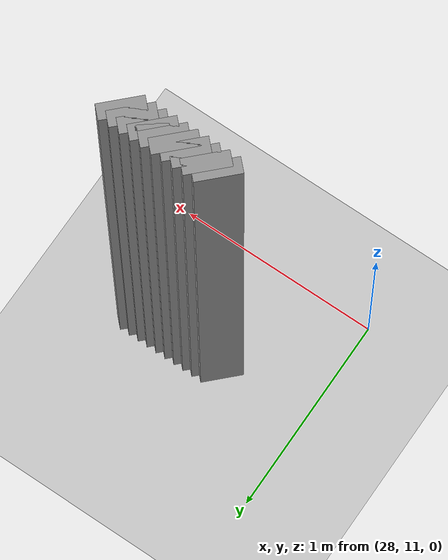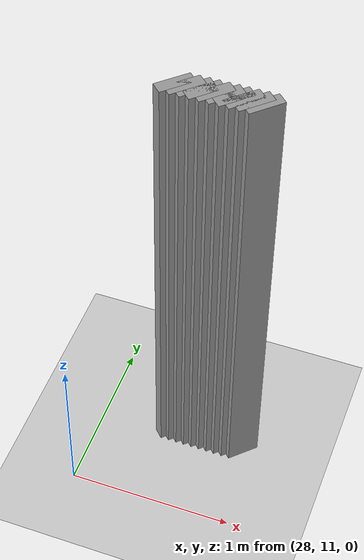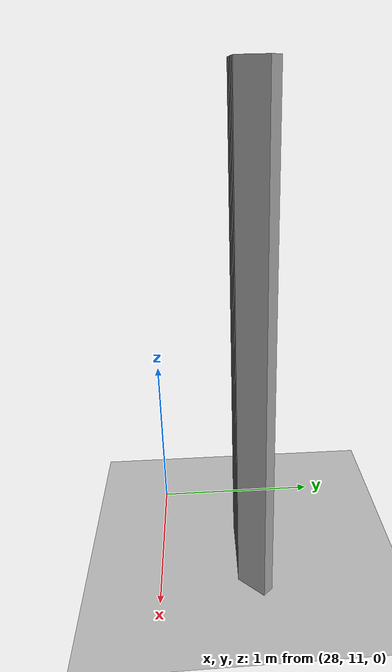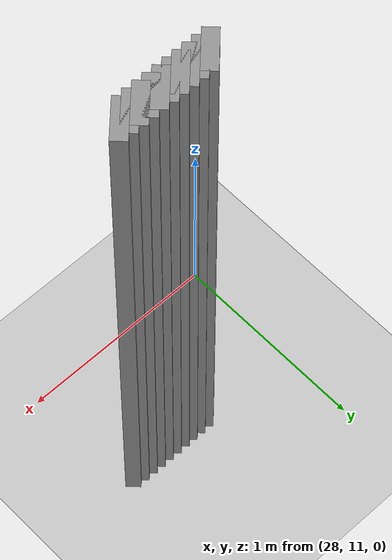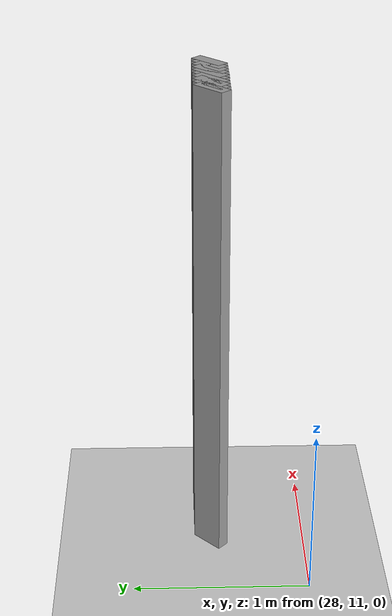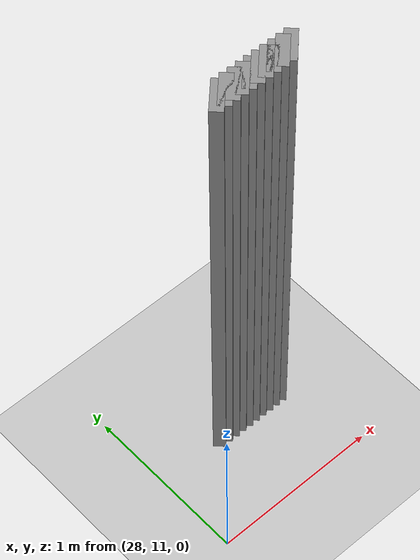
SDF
<sdf version="1.5">
 <world name="default">
  <include><uri>model://ground_plane</uri></include>
  <include><uri>model://sun</uri></include>
  <model name="grey_wall_2697">
   <static>1</static>
   <link name="link">
    <pose>28.45 11.55  1.4 0 0 -0.785398163397</pose>
    <collision name="collision"><geometry><box><size>0.0707106781187 .2  2.8</size></box></geometry></collision>
    <visual name="visual">
     <cast_shadows>0</cast_shadows>
     <geometry><box><size>0.0707106781187 .2  2.8</size></box></geometry>
     <material>
      <script>
       <uri>model://grey_wall/materials/scripts</uri>
       <uri>model://grey_wall/materials/textures</uri>
       <name>vrc/grey_wall</name>
      </script>
     </material>
    </visual>
   </link>
  </model>
  <model name="grey_wall_2698">
   <static>1</static>
   <link name="link">
    <pose>28.5 11.55  1.4 0 0 -0.785398163397</pose>
    <collision name="collision"><geometry><box><size>0.0707106781187 .2  2.8</size></box></geometry></collision>
    <visual name="visual">
     <cast_shadows>0</cast_shadows>
     <geometry><box><size>0.0707106781187 .2  2.8</size></box></geometry>
     <material>
      <script>
       <uri>model://grey_wall/materials/scripts</uri>
       <uri>model://grey_wall/materials/textures</uri>
       <name>vrc/grey_wall</name>
      </script>
     </material>
    </visual>
   </link>
  </model>
  <model name="grey_wall_2699">
   <static>1</static>
   <link name="link">
    <pose>28.55 11.55  1.4 0 0 -0.785398163397</pose>
    <collision name="collision"><geometry><box><size>0.0707106781187 .2  2.8</size></box></geometry></collision>
    <visual name="visual">
     <cast_shadows>0</cast_shadows>
     <geometry><box><size>0.0707106781187 .2  2.8</size></box></geometry>
     <material>
      <script>
       <uri>model://grey_wall/materials/scripts</uri>
       <uri>model://grey_wall/materials/textures</uri>
       <name>vrc/grey_wall</name>
      </script>
     </material>
    </visual>
   </link>
  </model>
  <model name="grey_wall_2700">
   <static>1</static>
   <link name="link">
    <pose>28.6 11.55  1.4 0 0 -0.785398163397</pose>
    <collision name="collision"><geometry><box><size>0.0707106781187 .2  2.8</size></box></geometry></collision>
    <visual name="visual">
     <cast_shadows>0</cast_shadows>
     <geometry><box><size>0.0707106781187 .2  2.8</size></box></geometry>
     <material>
      <script>
       <uri>model://grey_wall/materials/scripts</uri>
       <uri>model://grey_wall/materials/textures</uri>
       <name>vrc/grey_wall</name>
      </script>
     </material>
    </visual>
   </link>
  </model>
  <model name="grey_wall_2701">
   <static>1</static>
   <link name="link">
    <pose>28.65 11.55  1.4 0 0 -0.785398163397</pose>
    <collision name="collision"><geometry><box><size>0.0707106781187 .2  2.8</size></box></geometry></collision>
    <visual name="visual">
     <cast_shadows>0</cast_shadows>
     <geometry><box><size>0.0707106781187 .2  2.8</size></box></geometry>
     <material>
      <script>
       <uri>model://grey_wall/materials/scripts</uri>
       <uri>model://grey_wall/materials/textures</uri>
       <name>vrc/grey_wall</name>
      </script>
     </material>
    </visual>
   </link>
  </model>
  <model name="grey_wall_2702">
   <static>1</static>
   <link name="link">
    <pose>28.7 11.55  1.4 0 0 -0.785398163397</pose>
    <collision name="collision"><geometry><box><size>0.0707106781187 .2  2.8</size></box></geometry></collision>
    <visual name="visual">
     <cast_shadows>0</cast_shadows>
     <geometry><box><size>0.0707106781187 .2  2.8</size></box></geometry>
     <material>
      <script>
       <uri>model://grey_wall/materials/scripts</uri>
       <uri>model://grey_wall/materials/textures</uri>
       <name>vrc/grey_wall</name>
      </script>
     </material>
    </visual>
   </link>
  </model>
  <model name="grey_wall_2703">
   <static>1</static>
   <link name="link">
    <pose>28.75 11.55  1.4 0 0 -0.785398163397</pose>
    <collision name="collision"><geometry><box><size>0.0707106781187 .2  2.8</size></box></geometry></collision>
    <visual name="visual">
     <cast_shadows>0</cast_shadows>
     <geometry><box><size>0.0707106781187 .2  2.8</size></box></geometry>
     <material>
      <script>
       <uri>model://grey_wall/materials/scripts</uri>
       <uri>model://grey_wall/materials/textures</uri>
       <name>vrc/grey_wall</name>
      </script>
     </material>
    </visual>
   </link>
  </model>
  <model name="grey_wall_2704">
   <static>1</static>
   <link name="link">
    <pose>28.8 11.55  1.4 0 0 -0.785398163397</pose>
    <collision name="collision"><geometry><box><size>0.0707106781187 .2  2.8</size></box></geometry></collision>
    <visual name="visual">
     <cast_shadows>0</cast_shadows>
     <geometry><box><size>0.0707106781187 .2  2.8</size></box></geometry>
     <material>
      <script>
       <uri>model://grey_wall/materials/scripts</uri>
       <uri>model://grey_wall/materials/textures</uri>
       <name>vrc/grey_wall</name>
      </script>
     </material>
    </visual>
   </link>
  </model>
  <model name="grey_wall_2705">
   <static>1</static>
   <link name="link">
    <pose>28.85 11.55  1.4 0 0 -0.785398163397</pose>
    <collision name="collision"><geometry><box><size>0.0707106781187 .2  2.8</size></box></geometry></collision>
    <visual name="visual">
     <cast_shadows>0</cast_shadows>
     <geometry><box><size>0.0707106781187 .2  2.8</size></box></geometry>
     <material>
      <script>
       <uri>model://grey_wall/materials/scripts</uri>
       <uri>model://grey_wall/materials/textures</uri>
       <name>vrc/grey_wall</name>
      </script>
     </material>
    </visual>
   </link>
  </model>
  <model name="grey_wall_2706">
   <static>1</static>
   <link name="link">
    <pose>28.9 11.55  1.4 0 0 -0.785398163397</pose>
    <collision name="collision"><geometry><box><size>0.0707106781187 .2  2.8</size></box></geometry></collision>
    <visual name="visual">
     <cast_shadows>0</cast_shadows>
     <geometry><box><size>0.0707106781187 .2  2.8</size></box></geometry>
     <material>
      <script>
       <uri>model://grey_wall/materials/scripts</uri>
       <uri>model://grey_wall/materials/textures</uri>
       <name>vrc/grey_wall</name>
      </script>
     </material>
    </visual>
   </link>
  </model>
 </world>
</sdf>
